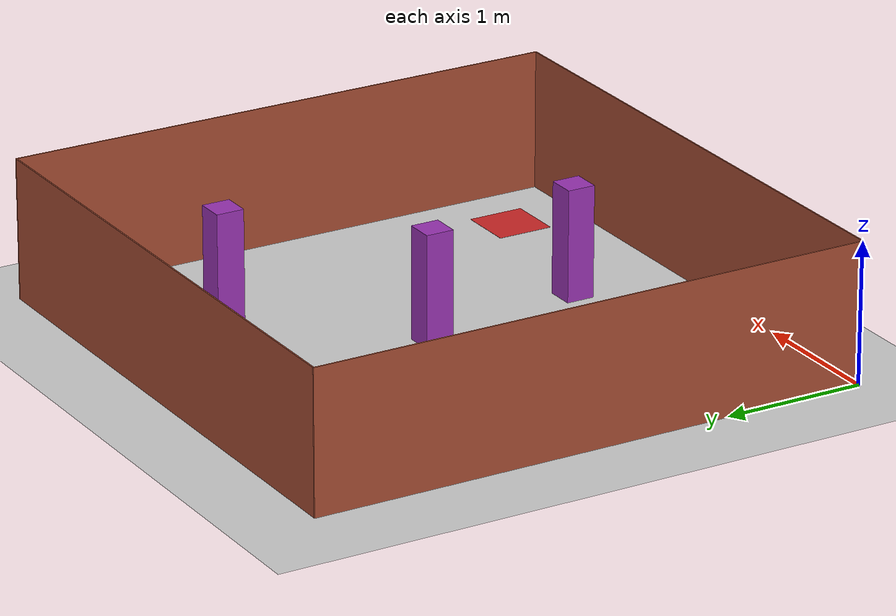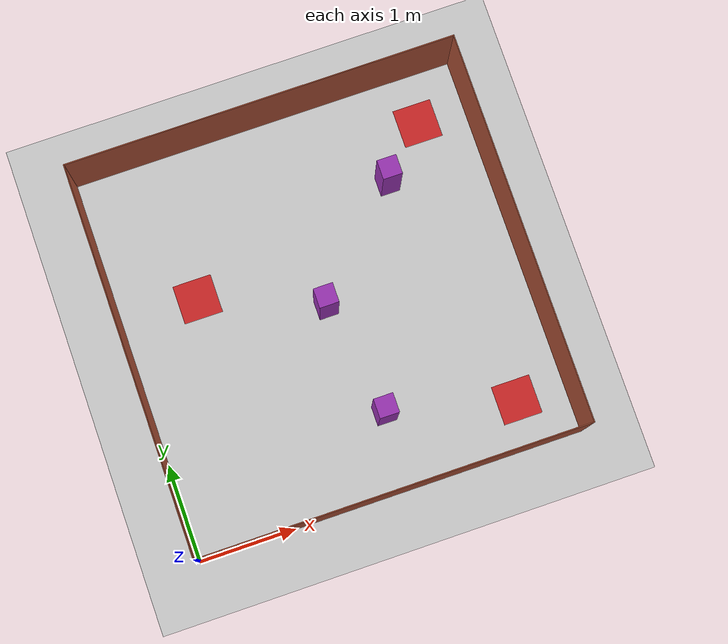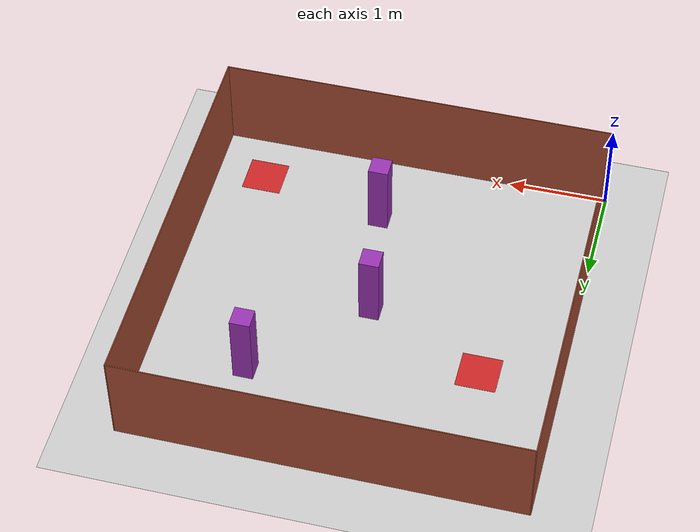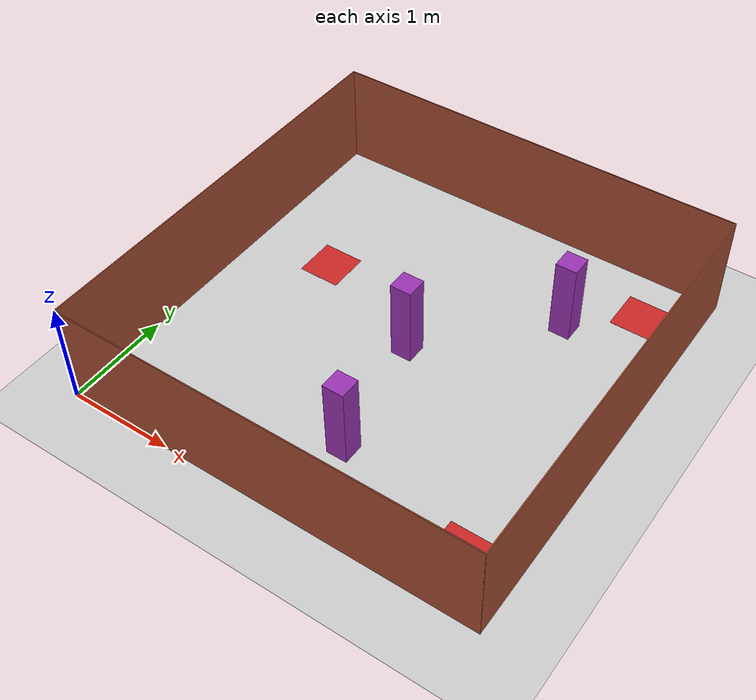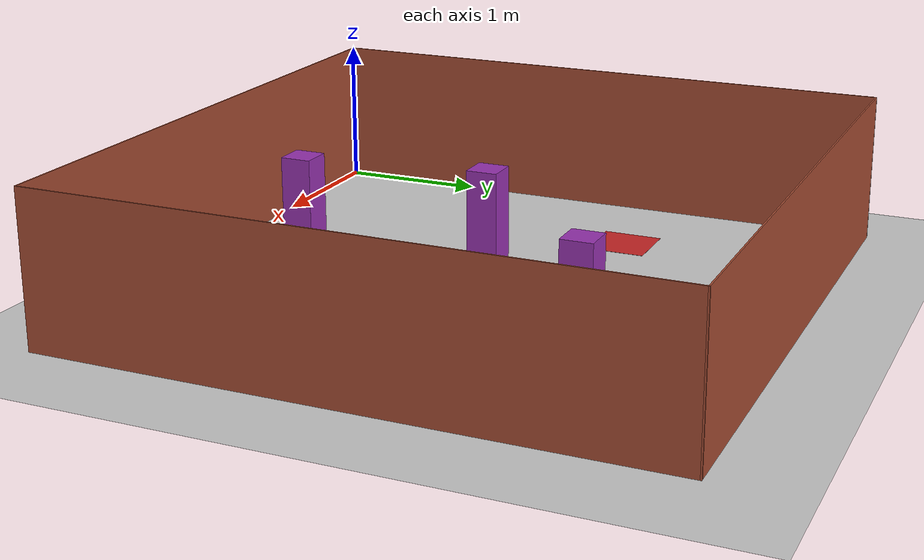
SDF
<sdf version="1.6">
 <world name="default">
  <light name="sun" type="directional">
   <pose>0 0 10 0 -0 0</pose>
   <diffuse>0.8 0.8 0.8 1</diffuse>
   <specular>0.2 0.2 0.2 1</specular>
   <attenuation>
    <range>1000</range>
    <constant>0.9</constant>
    <linear>0.01</linear>
    <quadratic>0.001</quadratic>
   </attenuation>
   <direction>0.5 0.1 -0.9</direction>
  </light>
  <model name="ground_plane">
   <static>1</static>
   <link name="link">
    <collision name="collision">
     <geometry><plane><normal>0 0 1</normal><size>8 8</size></plane></geometry>
     <surface><friction><ode><mu>100</mu><mu2>50</mu2></ode></friction></surface>
    </collision>
    <visual name="visual">
     <cast_shadows>0</cast_shadows>
     <geometry><plane><normal>0 0 1</normal><size>100 100</size></plane></geometry>
     <material>
      <script><uri>file://media/materials/scripts/gazebo.material</uri><name>Gazebo/Grey</name></script>
     </material>
    </visual>
    <velocity_decay><linear>0</linear><angular>0</angular></velocity_decay>
   </link>
  </model>
  <scene><ambient>0.4 0.4 0.4 1</ambient><background>0.7 0.7 0.7 1</background><shadows>0</shadows></scene>
  <physics name="default_physics" default="0" type="ode">
   <max_step_size>0.001</max_step_size>
   <real_time_factor>1</real_time_factor>
   <real_time_update_rate>0</real_time_update_rate>
  </physics>
  <gravity>0 0 -9.8</gravity>
  <magnetic_field>6e-06 2.3e-05 -4.2e-05</magnetic_field>
  <atmosphere type="adiabatic"/>
  <spherical_coordinates>
   <surface_model>EARTH_WGS84</surface_model>
   <latitude_deg>0</latitude_deg>
   <longitude_deg>0</longitude_deg>
   <elevation>0</elevation>
   <heading_deg>0</heading_deg>
  </spherical_coordinates>
  <audio><device>default</device></audio>
  <model name="model">
   <pose>2 2 0 0 -0 0</pose>
   <link name="Wall_0">
    <collision name="Wall_0_Collision">
     <geometry><box><size>4.01 0.01 1</size></box></geometry>
     <pose>0 0 0.5 0 -0 0</pose>
    </collision>
    <visual name="Wall_0_Visual">
     <pose>0 0 0.5 0 -0 0</pose>
     <geometry><box><size>4.01 0.01 1</size></box></geometry>
     <material>
      <script><uri>file://media/materials/scripts/gazebo.material</uri><name>Gazebo/Bricks</name></script>
      <ambient>0.921569 0.807843 0.615686 1</ambient>
     </material>
     <meta><layer>0</layer></meta>
    </visual>
    <pose>0 -2 0 0 -0 0</pose>
   </link>
   <link name="Wall_2">
    <collision name="Wall_2_Collision">
     <geometry><box><size>4.01 0.01 1</size></box></geometry>
     <pose>0 0 0.5 0 -0 0</pose>
    </collision>
    <visual name="Wall_2_Visual">
     <pose>0 0 0.5 0 -0 0</pose>
     <geometry><box><size>4.01 0.01 1</size></box></geometry>
     <material>
      <script><uri>file://media/materials/scripts/gazebo.material</uri><name>Gazebo/Bricks</name></script>
      <ambient>0.921569 0.807843 0.615686 1</ambient>
     </material>
     <meta><layer>0</layer></meta>
    </visual>
    <pose>2 0 0 0 -0 1.5708</pose>
   </link>
   <link name="Wall_4">
    <collision name="Wall_4_Collision">
     <geometry><box><size>4 0.01 1</size></box></geometry>
     <pose>0 0 0.5 0 -0 0</pose>
    </collision>
    <visual name="Wall_4_Visual">
     <pose>0 0 0.5 0 -0 0</pose>
     <geometry><box><size>4 0.01 1</size></box></geometry>
     <material>
      <script><uri>file://media/materials/scripts/gazebo.material</uri><name>Gazebo/Bricks</name></script>
      <ambient>0.921569 0.807843 0.615686 1</ambient>
     </material>
     <meta><layer>0</layer></meta>
    </visual>
    <pose>0.005 2 0 0 -0 3.14159</pose>
   </link>
   <link name="Wall_6">
    <collision name="Wall_6_Collision">
     <geometry><box><size>4 0.01 1</size></box></geometry>
     <pose>0 0 0.5 0 -0 0</pose>
    </collision>
    <visual name="Wall_6_Visual">
     <pose>0 0 0.5 0 -0 0</pose>
     <geometry><box><size>4 0.01 1</size></box></geometry>
     <material>
      <script><uri>file://media/materials/scripts/gazebo.material</uri><name>Gazebo/Bricks</name></script>
      <ambient>0.921569 0.807843 0.615686 1</ambient>
     </material>
     <meta><layer>0</layer></meta>
    </visual>
    <pose>-2 0.005 0 0 -0 -1.5708</pose>
   </link>
   <static>1</static>
  </model>
  <model name="model_0">
   <link name="link_0">
    <inertial>
     <mass>7500</mass>
     <inertia><ixx>12.5</ixx><ixy>0</ixy><ixz>0</ixz><iyy>12.5</iyy><iyz>0</iyz><izz>12.5</izz></inertia>
    </inertial>
    <pose>-0.2 -1.13333 0 0 -0 0</pose>
    <visual name="visual">
     <geometry><box><size>0.2 0.2 0.8</size></box></geometry>
     <material>
      <lighting>1</lighting>
      <script><uri>file://media/materials/scripts/gazebo.material</uri><name>Gazebo/Purple</name></script>
      <shader type="vertex"><normal_map>__default__</normal_map></shader>
      <ambient>1 0 1 1</ambient>
      <diffuse>1 0 1 1</diffuse>
      <specular>0.1 0.1 0.1 1</specular>
      <emissive>0 0 0 1</emissive>
     </material>
    </visual>
    <collision name="collision">
     <geometry><box><size>0.2 0.2 0.8</size></box></geometry>
     <surface>
      <friction>
       <ode><mu>10000</mu><mu2>10000</mu2><fdir1>0 0 0</fdir1><slip1>0</slip1><slip2>0</slip2></ode>
       <torsional>
        <coefficient>1</coefficient>
        <patch_radius>0</patch_radius>
        <surface_radius>0</surface_radius>
        <use_patch_radius>1</use_patch_radius>
        <ode><slip>0</slip></ode>
       </torsional>
      </friction>
      <bounce><restitution_coefficient>0</restitution_coefficient><threshold>1e+06</threshold></bounce>
      <contact>
       <collide_without_contact>0</collide_without_contact>
       <collide_without_contact_bitmask>1</collide_without_contact_bitmask>
       <collide_bitmask>1</collide_bitmask>
       <ode>
        <soft_cfm>0</soft_cfm>
        <soft_erp>0.2</soft_erp>
        <kp>1e+13</kp>
        <kd>1</kd>
        <max_vel>0.01</max_vel>
        <min_depth>0</min_depth>
       </ode>
       <bullet>
        <split_impulse>1</split_impulse>
        <split_impulse_penetration_threshold>-0.01</split_impulse_penetration_threshold>
        <soft_cfm>0</soft_cfm>
        <soft_erp>0.2</soft_erp>
        <kp>1e+13</kp>
        <kd>1</kd>
       </bullet>
      </contact>
     </surface>
    </collision>
   </link>
   <joint name="link_0_joint" type="fixed"><parent>__default__</parent><child>__default__</child></joint>
   <link name="link_0_clone">
    <inertial>
     <mass>7500</mass>
     <inertia><ixx>12.5</ixx><ixy>0</ixy><ixz>0</ixz><iyy>12.5</iyy><iyz>0</iyz><izz>12.5</izz></inertia>
    </inertial>
    <pose>-0.4 0.066667 0 0 -0 0</pose>
    <visual name="visual">
     <geometry><box><size>0.2 0.2 0.8</size></box></geometry>
     <material>
      <lighting>1</lighting>
      <script><uri>file://media/materials/scripts/gazebo.material</uri><name>Gazebo/Purple</name></script>
      <shader type="vertex"><normal_map>__default__</normal_map></shader>
      <ambient>1 0 1 1</ambient>
      <diffuse>1 0 1 1</diffuse>
      <specular>0.1 0.1 0.1 1</specular>
      <emissive>0 0 0 1</emissive>
     </material>
    </visual>
    <collision name="collision">
     <geometry><box><size>0.2 0.2 0.8</size></box></geometry>
     <surface>
      <friction>
       <ode><mu>10000</mu><mu2>10000</mu2><fdir1>0 0 0</fdir1><slip1>0</slip1><slip2>0</slip2></ode>
       <torsional>
        <coefficient>1</coefficient>
        <patch_radius>0</patch_radius>
        <surface_radius>0</surface_radius>
        <use_patch_radius>1</use_patch_radius>
        <ode><slip>0</slip></ode>
       </torsional>
      </friction>
      <bounce><restitution_coefficient>0</restitution_coefficient><threshold>1e+06</threshold></bounce>
      <contact>
       <collide_without_contact>0</collide_without_contact>
       <collide_without_contact_bitmask>1</collide_without_contact_bitmask>
       <collide_bitmask>1</collide_bitmask>
       <ode>
        <soft_cfm>0</soft_cfm>
        <soft_erp>0.2</soft_erp>
        <kp>1e+13</kp>
        <kd>1</kd>
        <max_vel>0.01</max_vel>
        <min_depth>0</min_depth>
       </ode>
       <bullet>
        <split_impulse>1</split_impulse>
        <split_impulse_penetration_threshold>-0.01</split_impulse_penetration_threshold>
        <soft_cfm>0</soft_cfm>
        <soft_erp>0.2</soft_erp>
        <kp>1e+13</kp>
        <kd>1</kd>
       </bullet>
      </contact>
     </surface>
    </collision>
   </link>
   <joint name="link_0_clone_joint" type="fixed"><parent>__default__</parent><child>__default__</child></joint>
   <link name="link_0_clone_clone">
    <inertial>
     <mass>7500</mass>
     <inertia><ixx>12.5</ixx><ixy>0</ixy><ixz>0</ixz><iyy>12.5</iyy><iyz>0</iyz><izz>12.5</izz></inertia>
    </inertial>
    <pose>0.6 1.06667 0 0 -0 0</pose>
    <visual name="visual">
     <geometry><box><size>0.2 0.2 0.8</size></box></geometry>
     <material>
      <lighting>1</lighting>
      <script><uri>file://media/materials/scripts/gazebo.material</uri><name>Gazebo/Purple</name></script>
      <shader type="vertex"><normal_map>__default__</normal_map></shader>
      <ambient>1 0 1 1</ambient>
      <diffuse>1 0 1 1</diffuse>
      <specular>0.1 0.1 0.1 1</specular>
      <emissive>0 0 0 1</emissive>
     </material>
    </visual>
    <collision name="collision">
     <geometry><box><size>0.2 0.2 0.8</size></box></geometry>
     <surface>
      <friction>
       <ode><mu>10000</mu><mu2>10000</mu2><fdir1>0 0 0</fdir1><slip1>0</slip1><slip2>0</slip2></ode>
       <torsional>
        <coefficient>1</coefficient>
        <patch_radius>0</patch_radius>
        <surface_radius>0</surface_radius>
        <use_patch_radius>1</use_patch_radius>
        <ode><slip>0</slip></ode>
       </torsional>
      </friction>
      <bounce><restitution_coefficient>0</restitution_coefficient><threshold>1e+06</threshold></bounce>
      <contact>
       <collide_without_contact>0</collide_without_contact>
       <collide_without_contact_bitmask>1</collide_without_contact_bitmask>
       <collide_bitmask>1</collide_bitmask>
       <ode>
        <soft_cfm>0</soft_cfm>
        <soft_erp>0.2</soft_erp>
        <kp>1e+13</kp>
        <kd>1</kd>
        <max_vel>0.01</max_vel>
        <min_depth>0</min_depth>
       </ode>
       <bullet>
        <split_impulse>1</split_impulse>
        <split_impulse_penetration_threshold>-0.01</split_impulse_penetration_threshold>
        <soft_cfm>0</soft_cfm>
        <soft_erp>0.2</soft_erp>
        <kp>1e+13</kp>
        <kd>1</kd>
       </bullet>
      </contact>
     </surface>
    </collision>
   </link>
   <joint name="link_0_clone_clone_joint" type="fixed">
    <parent>__default__</parent>
    <child>__default__</child>
   </joint>
   <static>0</static>
   <pose>2.39838 1.93441 0.400162 5.5e-05 -0.000395 0.000904</pose>
  </model>
  <model name="model_obstacle_point_new">
   <link name="link_1">
    <inertial>
     <mass>1</mass>
     <inertia>
      <ixx>0.166667</ixx>
      <ixy>0</ixy>
      <ixz>0</ixz>
      <iyy>0.166667</iyy>
      <iyz>0</iyz>
      <izz>0.166667</izz>
     </inertia>
    </inertial>
    <pose>0.9 1.33333 0 0 -0 0</pose>
    <visual name="visual">
     <geometry><box><size>0.4 0.4 0.001</size></box></geometry>
     <material>
      <lighting>1</lighting>
      <script><uri>file://media/materials/scripts/gazebo.material</uri><name>Gazebo/Red</name></script>
      <shader type="vertex"><normal_map>__default__</normal_map></shader>
      <ambient>1 0 0 1</ambient>
      <diffuse>1 0 0 1</diffuse>
      <specular>0.1 0.1 0.1 1</specular>
      <emissive>0 0 0 1</emissive>
     </material>
    </visual>
    <collision name="collision">
     <geometry><box><size>0.001 0.001 0.00001</size></box></geometry>
     <surface>
      <friction>
       <ode><mu>1</mu><mu2>1</mu2><fdir1>0 0 0</fdir1><slip1>0</slip1><slip2>0</slip2></ode>
       <torsional>
        <coefficient>1</coefficient>
        <patch_radius>0</patch_radius>
        <surface_radius>0</surface_radius>
        <use_patch_radius>1</use_patch_radius>
        <ode><slip>0</slip></ode>
       </torsional>
      </friction>
      <bounce><restitution_coefficient>0</restitution_coefficient><threshold>1e+06</threshold></bounce>
      <contact>
       <collide_without_contact>0</collide_without_contact>
       <collide_without_contact_bitmask>1</collide_without_contact_bitmask>
       <collide_bitmask>1</collide_bitmask>
       <ode>
        <soft_cfm>0</soft_cfm>
        <soft_erp>0.2</soft_erp>
        <kp>1e+13</kp>
        <kd>1</kd>
        <max_vel>0.01</max_vel>
        <min_depth>0</min_depth>
       </ode>
       <bullet>
        <split_impulse>1</split_impulse>
        <split_impulse_penetration_threshold>-0.01</split_impulse_penetration_threshold>
        <soft_cfm>0</soft_cfm>
        <soft_erp>0.2</soft_erp>
        <kp>1e+13</kp>
        <kd>1</kd>
       </bullet>
      </contact>
     </surface>
    </collision>
   </link>
   <link name="link_1_clone">
    <inertial>
     <mass>1</mass>
     <inertia>
      <ixx>0.166667</ixx>
      <ixy>0</ixy>
      <ixz>0</ixz>
      <iyy>0.166667</iyy>
      <iyz>0</iyz>
      <izz>0.166667</izz>
     </inertia>
    </inertial>
    <pose>0.9 -1.66667 0 0 -0 0</pose>
    <visual name="visual">
     <geometry><box><size>0.4 0.4 0.001</size></box></geometry>
     <material>
      <lighting>1</lighting>
      <script><uri>file://media/materials/scripts/gazebo.material</uri><name>Gazebo/Red</name></script>
      <shader type="vertex"><normal_map>__default__</normal_map></shader>
      <ambient>1 0 0 1</ambient>
      <diffuse>1 0 0 1</diffuse>
      <specular>0.1 0.1 0.1 1</specular>
      <emissive>0 0 0 1</emissive>
     </material>
    </visual>
    <collision name="collision">
     <geometry><box><size>0.001 0.001 0.00001</size></box></geometry>
     <surface>
      <friction>
       <ode><mu>1</mu><mu2>1</mu2><fdir1>0 0 0</fdir1><slip1>0</slip1><slip2>0</slip2></ode>
       <torsional>
        <coefficient>1</coefficient>
        <patch_radius>0</patch_radius>
        <surface_radius>0</surface_radius>
        <use_patch_radius>1</use_patch_radius>
        <ode><slip>0</slip></ode>
       </torsional>
      </friction>
      <bounce><restitution_coefficient>0</restitution_coefficient><threshold>1e+06</threshold></bounce>
      <contact>
       <collide_without_contact>0</collide_without_contact>
       <collide_without_contact_bitmask>1</collide_without_contact_bitmask>
       <collide_bitmask>1</collide_bitmask>
       <ode>
        <soft_cfm>0</soft_cfm>
        <soft_erp>0.2</soft_erp>
        <kp>1e+13</kp>
        <kd>1</kd>
        <max_vel>0.01</max_vel>
        <min_depth>0</min_depth>
       </ode>
       <bullet>
        <split_impulse>1</split_impulse>
        <split_impulse_penetration_threshold>-0.01</split_impulse_penetration_threshold>
        <soft_cfm>0</soft_cfm>
        <soft_erp>0.2</soft_erp>
        <kp>1e+13</kp>
        <kd>1</kd>
       </bullet>
      </contact>
     </surface>
    </collision>
   </link>
   <link name="link_1_clone_0">
    <inertial>
     <mass>1</mass>
     <inertia>
      <ixx>0.166667</ixx>
      <ixy>0</ixy>
      <ixz>0</ixz>
      <iyy>0.166667</iyy>
      <iyz>0</iyz>
      <izz>0.166667</izz>
     </inertia>
    </inertial>
    <pose>-1.8 0.333333 0 0 -0 0</pose>
    <visual name="visual">
     <geometry><box><size>0.4 0.4 0.001</size></box></geometry>
     <material>
      <lighting>1</lighting>
      <script><uri>file://media/materials/scripts/gazebo.material</uri><name>Gazebo/Red</name></script>
      <shader type="vertex"><normal_map>__default__</normal_map></shader>
      <ambient>1 0 0 1</ambient>
      <diffuse>1 0 0 1</diffuse>
      <specular>0.1 0.1 0.1 1</specular>
      <emissive>0 0 0 1</emissive>
     </material>
    </visual>
    <collision name="collision">
     <geometry><box><size>0.001 0.001 0.00001</size></box></geometry>
     <surface>
      <friction>
       <ode><mu>1</mu><mu2>1</mu2><fdir1>0 0 0</fdir1><slip1>0</slip1><slip2>0</slip2></ode>
       <torsional>
        <coefficient>1</coefficient>
        <patch_radius>0</patch_radius>
        <surface_radius>0</surface_radius>
        <use_patch_radius>1</use_patch_radius>
        <ode><slip>0</slip></ode>
       </torsional>
      </friction>
      <bounce><restitution_coefficient>0</restitution_coefficient><threshold>1e+06</threshold></bounce>
      <contact>
       <collide_without_contact>0</collide_without_contact>
       <collide_without_contact_bitmask>1</collide_without_contact_bitmask>
       <collide_bitmask>1</collide_bitmask>
       <ode>
        <soft_cfm>0</soft_cfm>
        <soft_erp>0.2</soft_erp>
        <kp>1e+13</kp>
        <kd>1</kd>
        <max_vel>0.01</max_vel>
        <min_depth>0</min_depth>
       </ode>
       <bullet>
        <split_impulse>1</split_impulse>
        <split_impulse_penetration_threshold>-0.01</split_impulse_penetration_threshold>
        <soft_cfm>0</soft_cfm>
        <soft_erp>0.2</soft_erp>
        <kp>1e+13</kp>
        <kd>1</kd>
       </bullet>
      </contact>
     </surface>
    </collision>
   </link>
   <static>0</static>
   <pose>2.6 2.16667 0.0005 0 -0 0</pose>
  </model>
 </world>
</sdf>
